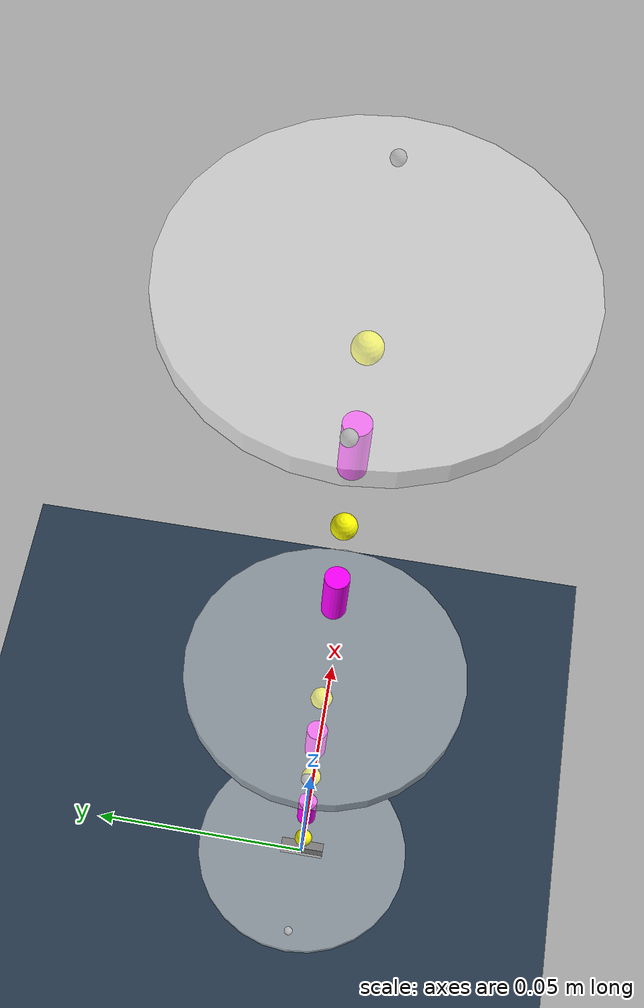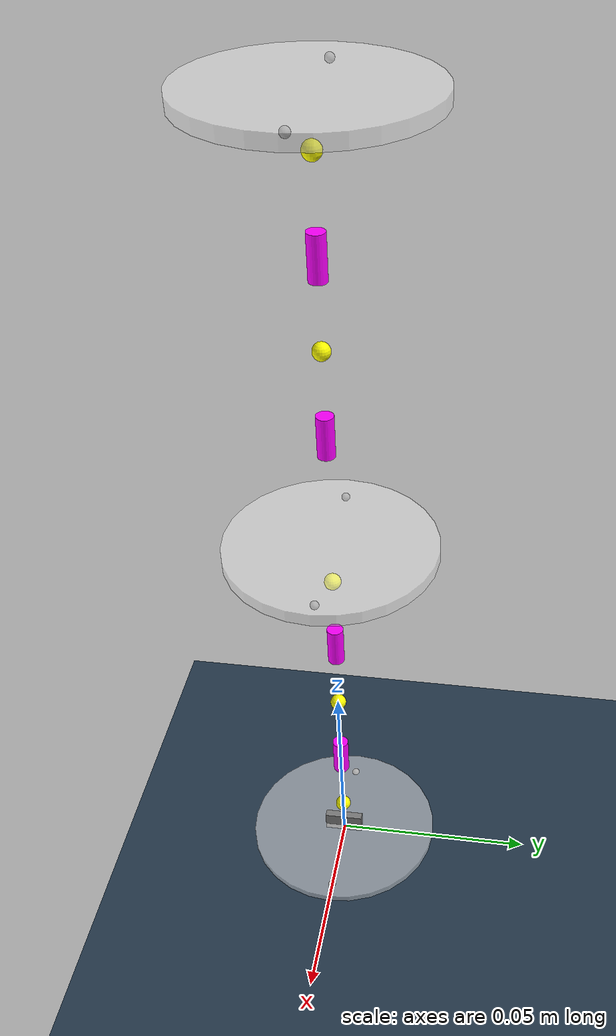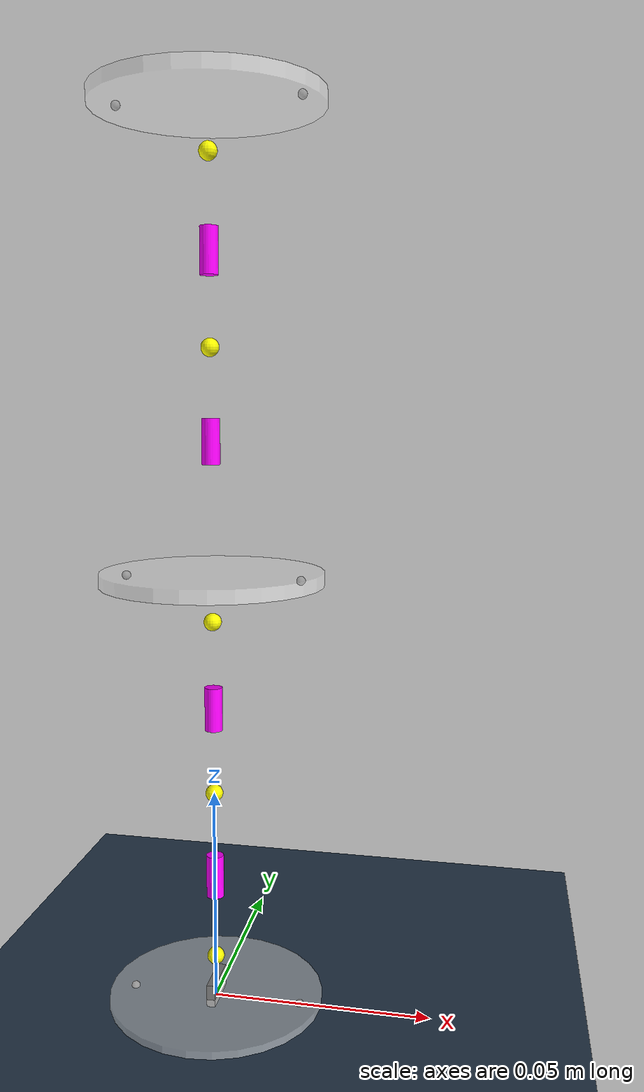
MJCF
<mujoco model="2Dspiral">
    <compiler angle="radian"/>
    <option gravity="0 0 0"/><!--重力设置  例"0 0 -9.81"代表"x y z"-->
    <default>
        <default class="freej">
            <joint type="free" damping="0" armature="0" limited="false"/>
        </default>
    </default>
    <asset>
        <!--导入模型-->
        <mesh name="1" file="disc.stl" scale="1  1  1"/>
        <mesh name="2" file="disc.stl" scale="1  1  1"/>
        <mesh name="3" file="disc.stl" scale="1  1  1"/>

        <texture name="texplane" type="2d" builtin="checker" rgb1=".2 .3 .4" rgb2=".1 0.15 0.2" width="512" height="512"
                 mark="cross" markrgb=".8 .8 .8"/>
        <texture type="skybox" builtin="gradient" rgb1="0.3 0.5 0.7" rgb2="0 0 0" width="512" height="3072"/>
        <material name="matplane" reflectance="0.3" texture="texplane" texrepeat="1 1" texuniform="true"/>
    </asset>
    <worldbody>
        <!-- 地面 -->
        <geom name="ground" type="plane" size="10 10 1" pos="0 0 0" quat="1 0 0 0" material="matplane" condim="1"/>
        <!-- 光源 -->
        <light pos="1 0.5 0.7" dir="-1 -0.5 -1" directional="true" castshadow="false" diffuse="0.4 0.4 0.4"
               specular="0.1 0.1 0.1"/>
        <!-- 运动捕获体（固定点）-->
        <body name="mocapt" mocap="true" pos="0 0 0">
            <geom type="box" group="1" size="0.001 0.005 0.005" contype="0" conaffinity="0" rgba=".5 .5 .5 1"/>
        </body>

        <!--基座圆盘，固定-->
        <body name="B0" pos="0           0         0">

            <geom type="mesh" mesh="1" name="1" pos="0 0 0" euler="0 0 0" rgba="1 1 1 0.5"/>
            <inertial pos="0 0 0" mass="0.01" diaginertia="0.001 0.001 0.001"/>
            <!--左右两根tendon的作用点-->
            <site name="s0_L" pos="-0.02           0    0" size="0.001       0.001       0.001"/>
            <site name="s0_R" pos="0.02           0    0" size="0.001       0.001       0.001"/>

            <!--在两个圆盘间增添球铰链和平移副（弹簧），参考以下形式-->
            <!-- 第11个球铰链 -->
            <body name="hinge11" pos="0 0 0.02"><!--定义一个刚体，位置相对0.02-->
                <inertial pos="0 0 0" mass="0.001" diaginertia="0.0001 0.0001 0.0001"/>
                <!--定义两个相互垂直的旋转副（分别绕x,y轴，由axis定义），在hinge11下方0.01，即B0与hinge11中点，该铰链连接B0和hinge11。-->
                <joint name="x11" type="hinge" pos="0 0 -0.01" axis="1 0 0" limited="true" range="-0.824       0.824"
                       stiffness="0.21111211121" damping="0.075164441"/>
                <joint name="y11" type="hinge" pos="0 0 -0.01" axis="0 1 0" limited="true" range="-0.824       0.824"
                       stiffness="0.21111211121"
                       damping="0.075164441"/><!--range：角度（弧度），stiffness：旋转刚度，damping：旋转阻尼。球铰链轴向为刚性连接-->
                <geom type="sphere" size="0.002" rgba="1 1 0 1" pos="0 0 -0.01"/>

                <body name="slide11" pos="0 0 0.02">
                    <inertial pos="0 0 0" mass="0.001" diaginertia="0.0001 0.0001 0.0001"/>
                    <joint name="slide_joint11" type="slide" pos="0 0 -0.01" limited="true" stiffness="135.7212422121"
                           damping="0.32121212321" range="-0.501 0.501"/>
                    <geom type="cylinder" size="0.002 0.005" rgba="1 0 1 1" pos="0 0 -0.01"/>

                    <!-- 第12个球铰链 -->
                    <body name="hinge12" pos="0 0 0.02">
                        <inertial pos="0 0 0" mass="0.001" diaginertia="0.0001 0.0001 0.0001"/>
                        <joint name="x12" type="hinge" pos="0 0 -0.01" axis="1 0 0" limited="true" range="-0.824       0.824"
                               stiffness="0.21111211121" damping="0.075164441"/>
                        <joint name="y12" type="hinge" pos="0 0 -0.01" axis="0 1 0" limited="true" range="-0.824       0.824"
                               stiffness="0.21111211121" damping="0.075164441"/>
                        <geom type="sphere" size="0.002" rgba="1 1 0 1" pos="0 0 -0.01"/>

                        <body name="slide12" pos="0 0 0.02">
                            <inertial pos="0 0 0" mass="0.001" diaginertia="0.0001 0.0001 0.0001"/>
                        <joint name="slide_joint12" type="slide" pos="0 0 -0.01" limited="true" stiffness="135.7212422121"
                               damping="0.32121212321" range="-0.501 0.501"/>
                        <geom type="cylinder" size="0.002 0.005" rgba="1 0 1 1" pos="0 0 -0.01"/>

                            <!--增添圆盘参考以下结构-->
                            <body name="B1" pos=" 0 0 0.02">
                                <joint name="x1" type="hinge" pos="0 0 -0.01" axis="1 0 0" limited="true" range="-0.824       0.824"
                                    stiffness="0.21111211121" damping="0.075164441"/>
                                <joint name="y1" type="hinge" pos="0 0 -0.01" axis="0 1 0" limited="true" range="-0.824       0.824"
                                    stiffness="0.21111211121" damping="0.075164441"/><!--定义铰链，该球铰链连接hinge12和B1-->
                                <geom type="mesh" mesh="2" name="2" pos="0 0 0" euler="0 0 0"
                                      rgba="1 1 1 0.5"/><!--画出圆盘-->
                                <geom type="sphere" size="0.002" rgba="1 1 0 1" pos="0 0 -0.01"/><!--画出球铰-->
                                <inertial pos="0 0 0" mass="0.01" diaginertia="0.001 0.001 0.001"/>
                                <site name="s1_L" pos="-0.02          0    0" size="0.001  0.001  0.001"/>
                                <site name="s1_R" pos="0.02          0    0" size="0.001  0.001  0.001"/>

                                <!-- 第21个球铰链 -->
                                <body name="hinge21" pos="0 0 0.02">
                                    <inertial pos="0 0 0" mass="0.001" diaginertia="0.0001 0.0001 0.0001"/>
                                    <joint name="x21" type="hinge" pos="0 0 -0.01" axis="1 0 0" limited="true" range="-0.824       0.824"
                                        stiffness="0.21111211121" damping="0.075164441"/>
                                    <joint name="y21" type="hinge" pos="0 0 -0.01" axis="0 1 0" limited="true" range="-0.824       0.824"
                                        stiffness="0.21111211121" damping="0.075164441"/>

                                    <body name="slide21" pos="0 0 0.02">
                                        <inertial pos="0 0 0" mass="0.001" diaginertia="0.0001 0.0001 0.0001"/>
                                        <joint name="slide_joint21" type="slide" pos="0 0 -0.01" limited="true"
                                               stiffness="135.7212422121" damping="0.32121212321" range="-0.501 0.501"/>
                                        <geom type="cylinder" size="0.002 0.005" rgba="1 0 1 1" pos="0 0 -0.01"/>

                                        <!-- 第22个球铰链 -->
                                        <body name="hinge22" pos="0 0 0.02">
                                            <inertial pos="0 0 0" mass="0.001" diaginertia="0.0001 0.0001 0.0001"/>
                                            <joint name="x22" type="hinge" pos="0 0 -0.01" axis="1 0 0" limited="true" range="-0.824       0.824"
                                                stiffness="0.21111211121" damping="0.075164441"/>
                                            <joint name="y22" type="hinge" pos="0 0 -0.01" axis="0 1 0" limited="true" range="-0.824       0.824"
                                                stiffness="0.21111211121" damping="0.075164441"/>
                                            <geom type="sphere" size="0.002" rgba="1 1 0 1" pos="0 0 -0.01"/>

                                            <body name="slide2" pos="0 0 0.02">
                                                <joint name="slide_joint22" type="slide" pos="0 0 -0.01" limited="true"
                                                       stiffness="135.7212422121" damping="10.112121212321"
                                                       range="-0.101 0.101"/>
                                                <geom type="cylinder" size="0.002 0.005" rgba="1 0 1 1"
                                                      pos="0 0 -0.01"/>

                                                <body name="B2" pos=" 0 0 0.02">
                                                    <joint name="x2" type="hinge" pos="0 0 -0.01" axis="1 0 0" limited="true" range="-0.824       0.824"
                                                        stiffness="0.21111211121" damping="0.075164441"/>
                                                    <joint name="y2" type="hinge" pos="0 0 -0.01" axis="0 1 0" limited="true" range="-0.824       0.824"
                                                        stiffness="0.21111211121" damping="0.075164441"/>
                                                    <geom type="mesh" mesh="3" name="3" pos="0 0 0" euler="0 0 0"
                                                          rgba="1 1 1 0.5"/>
                                                    <geom type="sphere" size="0.002" rgba="1 1 0 1" pos="0 0 -0.01"/>
                                                    <inertial pos="0 0 0" mass="0.01" diaginertia="0.001 0.001 0.001"/>
                                                    <site name="s2_L" pos="-0.02          0    0"
                                                          size="0.001  0.001  0.001"/>
                                                    <site name="s2_R" pos="0.02          0    0"
                                                          size="0.001  0.001  0.001"/>

                                                </body>
                                            </body>
                                        </body>
                                    </body>
                                </body>
                            </body>
                        </body>
                    </body>
                </body>
            </body>
        </body>
    </worldbody>

    <equality>
        <weld body1="mocapt" body2="B0" solref="0.01 1" solimp=".9 .9 0.01"/>
    </equality>
</mujoco>
